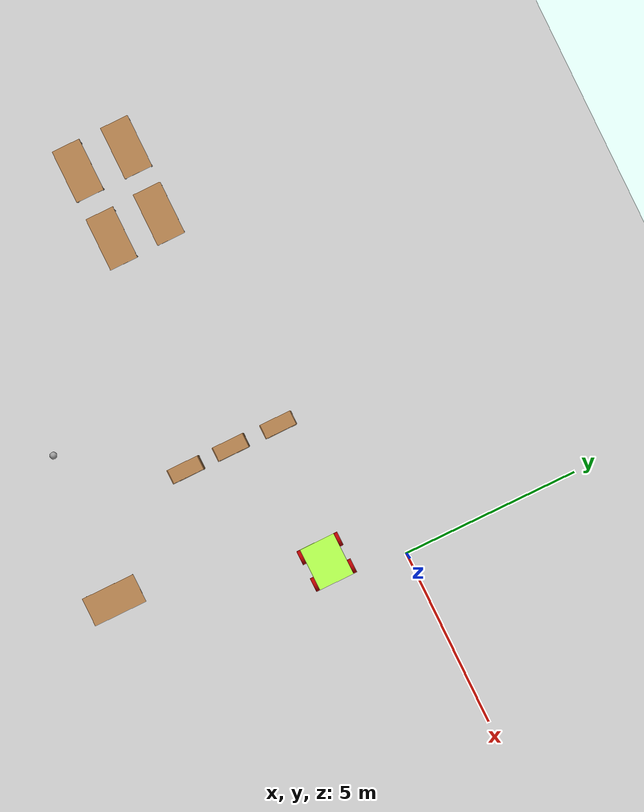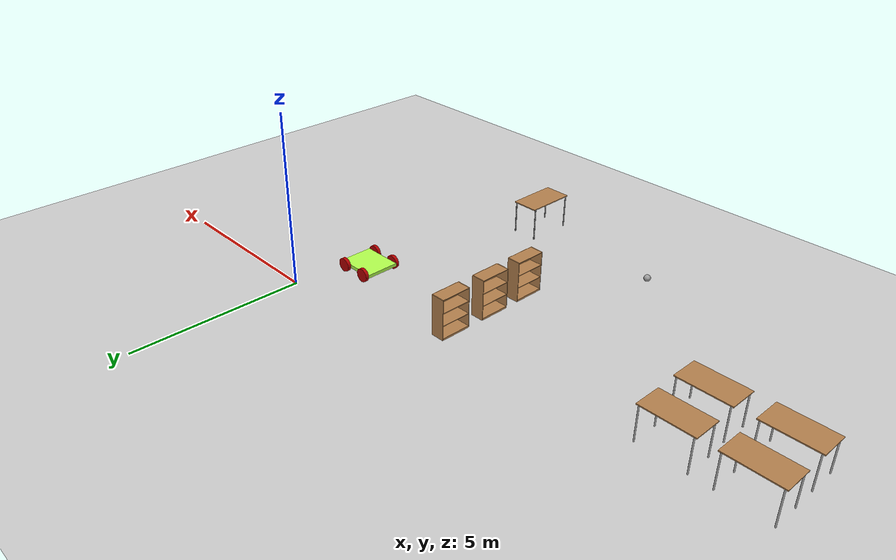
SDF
<sdf version="1.6">
 <world name="default">
  <model name="ground_plane">
   <static>1</static>
   <link name="link">
    <collision name="collision">
     <geometry><plane><normal>0 0 1</normal><size>100 100</size></plane></geometry>
     <surface>
      <contact><collide_bitmask>65535</collide_bitmask></contact>
      <friction><ode><mu>100</mu><mu2>50</mu2></ode></friction>
     </surface>
    </collision>
    <visual name="visual">
     <cast_shadows>0</cast_shadows>
     <geometry><plane><normal>0 0 1</normal><size>100 100</size></plane></geometry>
     <material>
      <script><uri>file://media/materials/scripts/gazebo.material</uri><name>Gazebo/Grey</name></script>
     </material>
    </visual>
   </link>
  </model>
  <model name="bookshelf">
   <static>1</static>
   <link name="link">
    <inertial><mass>1</mass></inertial>
    <collision name="back">
     <pose>0 0.005 0.6 0 -0 0</pose>
     <geometry><box><size>0.9 0.01 1.2</size></box></geometry>
    </collision>
    <visual name="visual1">
     <pose>0 0.005 0.6 0 -0 0</pose>
     <geometry><box><size>0.9 0.01 1.2</size></box></geometry>
     <material>
      <script><uri>file://media/materials/scripts/gazebo.material</uri><name>Gazebo/Wood</name></script>
     </material>
    </visual>
    <collision name="left_side">
     <pose>0.45 -0.195 0.6 0 -0 0</pose>
     <geometry><box><size>0.02 0.4 1.2</size></box></geometry>
    </collision>
    <visual name="visual2">
     <pose>0.45 -0.195 0.6 0 -0 0</pose>
     <geometry><box><size>0.02 0.4 1.2</size></box></geometry>
     <material>
      <script><uri>file://media/materials/scripts/gazebo.material</uri><name>Gazebo/Wood</name></script>
     </material>
    </visual>
    <collision name="right_side">
     <pose>-0.45 -0.195 0.6 0 -0 0</pose>
     <geometry><box><size>0.02 0.4 1.2</size></box></geometry>
    </collision>
    <visual name="visual3">
     <pose>-0.45 -0.195 0.6 0 -0 0</pose>
     <geometry><box><size>0.02 0.4 1.2</size></box></geometry>
     <material>
      <script><uri>file://media/materials/scripts/gazebo.material</uri><name>Gazebo/Wood</name></script>
     </material>
    </visual>
    <collision name="bottom">
     <pose>0 -0.195 0.03 0 -0 0</pose>
     <geometry><box><size>0.88 0.4 0.06</size></box></geometry>
    </collision>
    <visual name="visual4">
     <pose>0 -0.195 0.03 0 -0 0</pose>
     <geometry><box><size>0.88 0.4 0.06</size></box></geometry>
     <material>
      <script><uri>file://media/materials/scripts/gazebo.material</uri><name>Gazebo/Wood</name></script>
     </material>
    </visual>
    <collision name="top">
     <pose>0 -0.195 1.19 0 -0 0</pose>
     <geometry><box><size>0.88 0.4 0.02</size></box></geometry>
    </collision>
    <visual name="visual5">
     <pose>0 -0.195 1.19 0 -0 0</pose>
     <geometry><box><size>0.88 0.4 0.02</size></box></geometry>
     <material>
      <script><uri>file://media/materials/scripts/gazebo.material</uri><name>Gazebo/Wood</name></script>
     </material>
    </visual>
    <collision name="low_shelf">
     <pose>0 -0.195 0.43 0 -0 0</pose>
     <geometry><box><size>0.88 0.4 0.02</size></box></geometry>
    </collision>
    <visual name="visual6">
     <pose>0 -0.195 0.43 0 -0 0</pose>
     <geometry><box><size>0.88 0.4 0.02</size></box></geometry>
     <material>
      <script><uri>file://media/materials/scripts/gazebo.material</uri><name>Gazebo/Wood</name></script>
     </material>
    </visual>
    <collision name="high_shelf">
     <pose>0 -0.195 0.8 0 -0 0</pose>
     <geometry><box><size>0.88 0.4 0.02</size></box></geometry>
    </collision>
    <visual name="visual7">
     <pose>0 -0.195 0.8 0 -0 0</pose>
     <geometry><box><size>0.88 0.4 0.02</size></box></geometry>
     <material>
      <script><uri>file://media/materials/scripts/gazebo.material</uri><name>Gazebo/Wood</name></script>
     </material>
    </visual>
   </link>
   <pose>-4.39932 -4.29752 0 0 0 -1.57079</pose>
  </model>
  <model name="bookshelf_clone">
   <static>1</static>
   <link name="link">
    <inertial><mass>1</mass></inertial>
    <collision name="back">
     <pose>0 0.005 0.6 0 -0 0</pose>
     <geometry><box><size>0.9 0.01 1.2</size></box></geometry>
    </collision>
    <visual name="visual1">
     <pose>0 0.005 0.6 0 -0 0</pose>
     <geometry><box><size>0.9 0.01 1.2</size></box></geometry>
     <material>
      <script><uri>file://media/materials/scripts/gazebo.material</uri><name>Gazebo/Wood</name></script>
     </material>
    </visual>
    <collision name="left_side">
     <pose>0.45 -0.195 0.6 0 -0 0</pose>
     <geometry><box><size>0.02 0.4 1.2</size></box></geometry>
    </collision>
    <visual name="visual2">
     <pose>0.45 -0.195 0.6 0 -0 0</pose>
     <geometry><box><size>0.02 0.4 1.2</size></box></geometry>
     <material>
      <script><uri>file://media/materials/scripts/gazebo.material</uri><name>Gazebo/Wood</name></script>
     </material>
    </visual>
    <collision name="right_side">
     <pose>-0.45 -0.195 0.6 0 -0 0</pose>
     <geometry><box><size>0.02 0.4 1.2</size></box></geometry>
    </collision>
    <visual name="visual3">
     <pose>-0.45 -0.195 0.6 0 -0 0</pose>
     <geometry><box><size>0.02 0.4 1.2</size></box></geometry>
     <material>
      <script><uri>file://media/materials/scripts/gazebo.material</uri><name>Gazebo/Wood</name></script>
     </material>
    </visual>
    <collision name="bottom">
     <pose>0 -0.195 0.03 0 -0 0</pose>
     <geometry><box><size>0.88 0.4 0.06</size></box></geometry>
    </collision>
    <visual name="visual4">
     <pose>0 -0.195 0.03 0 -0 0</pose>
     <geometry><box><size>0.88 0.4 0.06</size></box></geometry>
     <material>
      <script><uri>file://media/materials/scripts/gazebo.material</uri><name>Gazebo/Wood</name></script>
     </material>
    </visual>
    <collision name="top">
     <pose>0 -0.195 1.19 0 -0 0</pose>
     <geometry><box><size>0.88 0.4 0.02</size></box></geometry>
    </collision>
    <visual name="visual5">
     <pose>0 -0.195 1.19 0 -0 0</pose>
     <geometry><box><size>0.88 0.4 0.02</size></box></geometry>
     <material>
      <script><uri>file://media/materials/scripts/gazebo.material</uri><name>Gazebo/Wood</name></script>
     </material>
    </visual>
    <collision name="low_shelf">
     <pose>0 -0.195 0.43 0 -0 0</pose>
     <geometry><box><size>0.88 0.4 0.02</size></box></geometry>
    </collision>
    <visual name="visual6">
     <pose>0 -0.195 0.43 0 -0 0</pose>
     <geometry><box><size>0.88 0.4 0.02</size></box></geometry>
     <material>
      <script><uri>file://media/materials/scripts/gazebo.material</uri><name>Gazebo/Wood</name></script>
     </material>
    </visual>
    <collision name="high_shelf">
     <pose>0 -0.195 0.8 0 -0 0</pose>
     <geometry><box><size>0.88 0.4 0.02</size></box></geometry>
    </collision>
    <visual name="visual7">
     <pose>0 -0.195 0.8 0 -0 0</pose>
     <geometry><box><size>0.88 0.4 0.02</size></box></geometry>
     <material>
      <script><uri>file://media/materials/scripts/gazebo.material</uri><name>Gazebo/Wood</name></script>
     </material>
    </visual>
   </link>
   <pose>-4.40975 -2.96251 0 0 0 -1.57079</pose>
  </model>
  <model name="bookshelf_clone_0">
   <static>1</static>
   <link name="link">
    <inertial><mass>1</mass></inertial>
    <collision name="back">
     <pose>0 0.005 0.6 0 -0 0</pose>
     <geometry><box><size>0.9 0.01 1.2</size></box></geometry>
    </collision>
    <visual name="visual1">
     <pose>0 0.005 0.6 0 -0 0</pose>
     <geometry><box><size>0.9 0.01 1.2</size></box></geometry>
     <material>
      <script><uri>file://media/materials/scripts/gazebo.material</uri><name>Gazebo/Wood</name></script>
     </material>
    </visual>
    <collision name="left_side">
     <pose>0.45 -0.195 0.6 0 -0 0</pose>
     <geometry><box><size>0.02 0.4 1.2</size></box></geometry>
    </collision>
    <visual name="visual2">
     <pose>0.45 -0.195 0.6 0 -0 0</pose>
     <geometry><box><size>0.02 0.4 1.2</size></box></geometry>
     <material>
      <script><uri>file://media/materials/scripts/gazebo.material</uri><name>Gazebo/Wood</name></script>
     </material>
    </visual>
    <collision name="right_side">
     <pose>-0.45 -0.195 0.6 0 -0 0</pose>
     <geometry><box><size>0.02 0.4 1.2</size></box></geometry>
    </collision>
    <visual name="visual3">
     <pose>-0.45 -0.195 0.6 0 -0 0</pose>
     <geometry><box><size>0.02 0.4 1.2</size></box></geometry>
     <material>
      <script><uri>file://media/materials/scripts/gazebo.material</uri><name>Gazebo/Wood</name></script>
     </material>
    </visual>
    <collision name="bottom">
     <pose>0 -0.195 0.03 0 -0 0</pose>
     <geometry><box><size>0.88 0.4 0.06</size></box></geometry>
    </collision>
    <visual name="visual4">
     <pose>0 -0.195 0.03 0 -0 0</pose>
     <geometry><box><size>0.88 0.4 0.06</size></box></geometry>
     <material>
      <script><uri>file://media/materials/scripts/gazebo.material</uri><name>Gazebo/Wood</name></script>
     </material>
    </visual>
    <collision name="top">
     <pose>0 -0.195 1.19 0 -0 0</pose>
     <geometry><box><size>0.88 0.4 0.02</size></box></geometry>
    </collision>
    <visual name="visual5">
     <pose>0 -0.195 1.19 0 -0 0</pose>
     <geometry><box><size>0.88 0.4 0.02</size></box></geometry>
     <material>
      <script><uri>file://media/materials/scripts/gazebo.material</uri><name>Gazebo/Wood</name></script>
     </material>
    </visual>
    <collision name="low_shelf">
     <pose>0 -0.195 0.43 0 -0 0</pose>
     <geometry><box><size>0.88 0.4 0.02</size></box></geometry>
    </collision>
    <visual name="visual6">
     <pose>0 -0.195 0.43 0 -0 0</pose>
     <geometry><box><size>0.88 0.4 0.02</size></box></geometry>
     <material>
      <script><uri>file://media/materials/scripts/gazebo.material</uri><name>Gazebo/Wood</name></script>
     </material>
    </visual>
    <collision name="high_shelf">
     <pose>0 -0.195 0.8 0 -0 0</pose>
     <geometry><box><size>0.88 0.4 0.02</size></box></geometry>
    </collision>
    <visual name="visual7">
     <pose>0 -0.195 0.8 0 -0 0</pose>
     <geometry><box><size>0.88 0.4 0.02</size></box></geometry>
     <material>
      <script><uri>file://media/materials/scripts/gazebo.material</uri><name>Gazebo/Wood</name></script>
     </material>
    </visual>
   </link>
   <pose>-4.39783 -1.57004 0 0 0 -1.57079</pose>
  </model>
  <model name="table">
   <static>1</static>
   <link name="link">
    <collision name="surface">
     <pose>0 0 1 0 -0 0</pose>
     <geometry><box><size>1.5 0.8 0.03</size></box></geometry>
     <surface><friction><ode><mu>0.6</mu><mu2>0.6</mu2></ode></friction></surface>
    </collision>
    <visual name="visual1">
     <pose>0 0 1 0 -0 0</pose>
     <geometry><box><size>1.5 0.8 0.03</size></box></geometry>
     <material>
      <script><uri>file://media/materials/scripts/gazebo.material</uri><name>Gazebo/Wood</name></script>
     </material>
    </visual>
    <collision name="front_left_leg">
     <pose>0.68 0.38 0.5 0 -0 0</pose>
     <geometry><cylinder><radius>0.02</radius><length>1</length></cylinder></geometry>
    </collision>
    <visual name="front_left_leg">
     <pose>0.68 0.38 0.5 0 -0 0</pose>
     <geometry><cylinder><radius>0.02</radius><length>1</length></cylinder></geometry>
     <material>
      <script><uri>file://media/materials/scripts/gazebo.material</uri><name>Gazebo/Grey</name></script>
     </material>
    </visual>
    <collision name="front_right_leg">
     <pose>0.68 -0.38 0.5 0 -0 0</pose>
     <geometry><cylinder><radius>0.02</radius><length>1</length></cylinder></geometry>
    </collision>
    <visual name="front_right_leg">
     <pose>0.68 -0.38 0.5 0 -0 0</pose>
     <geometry><cylinder><radius>0.02</radius><length>1</length></cylinder></geometry>
     <material>
      <script><uri>file://media/materials/scripts/gazebo.material</uri><name>Gazebo/Grey</name></script>
     </material>
    </visual>
    <collision name="back_right_leg">
     <pose>-0.68 -0.38 0.5 0 -0 0</pose>
     <geometry><cylinder><radius>0.02</radius><length>1</length></cylinder></geometry>
    </collision>
    <visual name="back_right_leg">
     <pose>-0.68 -0.38 0.5 0 -0 0</pose>
     <geometry><cylinder><radius>0.02</radius><length>1</length></cylinder></geometry>
     <material>
      <script><uri>file://media/materials/scripts/gazebo.material</uri><name>Gazebo/Grey</name></script>
     </material>
    </visual>
    <collision name="back_left_leg">
     <pose>-0.68 0.38 0.5 0 -0 0</pose>
     <geometry><cylinder><radius>0.02</radius><length>1</length></cylinder></geometry>
    </collision>
    <visual name="back_left_leg">
     <pose>-0.68 0.38 0.5 0 -0 0</pose>
     <geometry><cylinder><radius>0.02</radius><length>1</length></cylinder></geometry>
     <material>
      <script><uri>file://media/materials/scripts/gazebo.material</uri><name>Gazebo/Grey</name></script>
     </material>
    </visual>
   </link>
   <pose>-2.30991 -7.51771 0 0 -0 1.5707</pose>
  </model>
  <model name="table_0_clone_1">
   <static>1</static>
   <link name="link">
    <collision name="surface">
     <pose>0 0 1 0 -0 0</pose>
     <geometry><box><size>1.5 0.8 0.03</size></box></geometry>
     <surface><friction><ode><mu>0.6</mu><mu2>0.6</mu2></ode></friction></surface>
    </collision>
    <visual name="visual1">
     <pose>0 0 1 0 -0 0</pose>
     <geometry><box><size>1.5 0.8 0.03</size></box></geometry>
     <material>
      <script><uri>file://media/materials/scripts/gazebo.material</uri><name>Gazebo/Wood</name></script>
     </material>
    </visual>
    <collision name="front_left_leg">
     <pose>0.68 0.38 0.5 0 -0 0</pose>
     <geometry><cylinder><radius>0.02</radius><length>1</length></cylinder></geometry>
    </collision>
    <visual name="front_left_leg">
     <pose>0.68 0.38 0.5 0 -0 0</pose>
     <geometry><cylinder><radius>0.02</radius><length>1</length></cylinder></geometry>
     <material>
      <script><uri>file://media/materials/scripts/gazebo.material</uri><name>Gazebo/Grey</name></script>
     </material>
    </visual>
    <collision name="front_right_leg">
     <pose>0.68 -0.38 0.5 0 -0 0</pose>
     <geometry><cylinder><radius>0.02</radius><length>1</length></cylinder></geometry>
    </collision>
    <visual name="front_right_leg">
     <pose>0.68 -0.38 0.5 0 -0 0</pose>
     <geometry><cylinder><radius>0.02</radius><length>1</length></cylinder></geometry>
     <material>
      <script><uri>file://media/materials/scripts/gazebo.material</uri><name>Gazebo/Grey</name></script>
     </material>
    </visual>
    <collision name="back_right_leg">
     <pose>-0.68 -0.38 0.5 0 -0 0</pose>
     <geometry><cylinder><radius>0.02</radius><length>1</length></cylinder></geometry>
    </collision>
    <visual name="back_right_leg">
     <pose>-0.68 -0.38 0.5 0 -0 0</pose>
     <geometry><cylinder><radius>0.02</radius><length>1</length></cylinder></geometry>
     <material>
      <script><uri>file://media/materials/scripts/gazebo.material</uri><name>Gazebo/Grey</name></script>
     </material>
    </visual>
    <collision name="back_left_leg">
     <pose>-0.68 0.38 0.5 0 -0 0</pose>
     <geometry><cylinder><radius>0.02</radius><length>1</length></cylinder></geometry>
    </collision>
    <visual name="back_left_leg">
     <pose>-0.68 0.38 0.5 0 -0 0</pose>
     <geometry><cylinder><radius>0.02</radius><length>1</length></cylinder></geometry>
     <material>
      <script><uri>file://media/materials/scripts/gazebo.material</uri><name>Gazebo/Grey</name></script>
     </material>
    </visual>
   </link>
   <pose>-12.9803 -1.96561 0 0 -0 0</pose>
  </model>
  <model name="table_0_clone_2">
   <static>1</static>
   <link name="link">
    <collision name="surface">
     <pose>0 0 1 0 -0 0</pose>
     <geometry><box><size>1.5 0.8 0.03</size></box></geometry>
     <surface><friction><ode><mu>0.6</mu><mu2>0.6</mu2></ode></friction></surface>
    </collision>
    <visual name="visual1">
     <pose>0 0 1 0 -0 0</pose>
     <geometry><box><size>1.5 0.8 0.03</size></box></geometry>
     <material>
      <script><uri>file://media/materials/scripts/gazebo.material</uri><name>Gazebo/Wood</name></script>
     </material>
    </visual>
    <collision name="front_left_leg">
     <pose>0.68 0.38 0.5 0 -0 0</pose>
     <geometry><cylinder><radius>0.02</radius><length>1</length></cylinder></geometry>
    </collision>
    <visual name="front_left_leg">
     <pose>0.68 0.38 0.5 0 -0 0</pose>
     <geometry><cylinder><radius>0.02</radius><length>1</length></cylinder></geometry>
     <material>
      <script><uri>file://media/materials/scripts/gazebo.material</uri><name>Gazebo/Grey</name></script>
     </material>
    </visual>
    <collision name="front_right_leg">
     <pose>0.68 -0.38 0.5 0 -0 0</pose>
     <geometry><cylinder><radius>0.02</radius><length>1</length></cylinder></geometry>
    </collision>
    <visual name="front_right_leg">
     <pose>0.68 -0.38 0.5 0 -0 0</pose>
     <geometry><cylinder><radius>0.02</radius><length>1</length></cylinder></geometry>
     <material>
      <script><uri>file://media/materials/scripts/gazebo.material</uri><name>Gazebo/Grey</name></script>
     </material>
    </visual>
    <collision name="back_right_leg">
     <pose>-0.68 -0.38 0.5 0 -0 0</pose>
     <geometry><cylinder><radius>0.02</radius><length>1</length></cylinder></geometry>
    </collision>
    <visual name="back_right_leg">
     <pose>-0.68 -0.38 0.5 0 -0 0</pose>
     <geometry><cylinder><radius>0.02</radius><length>1</length></cylinder></geometry>
     <material>
      <script><uri>file://media/materials/scripts/gazebo.material</uri><name>Gazebo/Grey</name></script>
     </material>
    </visual>
    <collision name="back_left_leg">
     <pose>-0.68 0.38 0.5 0 -0 0</pose>
     <geometry><cylinder><radius>0.02</radius><length>1</length></cylinder></geometry>
    </collision>
    <visual name="back_left_leg">
     <pose>-0.68 0.38 0.5 0 -0 0</pose>
     <geometry><cylinder><radius>0.02</radius><length>1</length></cylinder></geometry>
     <material>
      <script><uri>file://media/materials/scripts/gazebo.material</uri><name>Gazebo/Grey</name></script>
     </material>
    </visual>
   </link>
   <pose>-12.9768 -3.39456 0 0 -0 0</pose>
  </model>
  <model name="table_0_clone_4">
   <static>1</static>
   <link name="link">
    <collision name="surface">
     <pose>0 0 1 0 -0 0</pose>
     <geometry><box><size>1.5 0.8 0.03</size></box></geometry>
     <surface><friction><ode><mu>0.6</mu><mu2>0.6</mu2></ode></friction></surface>
    </collision>
    <visual name="visual1">
     <pose>0 0 1 0 -0 0</pose>
     <geometry><box><size>1.5 0.8 0.03</size></box></geometry>
     <material>
      <script><uri>file://media/materials/scripts/gazebo.material</uri><name>Gazebo/Wood</name></script>
     </material>
    </visual>
    <collision name="front_left_leg">
     <pose>0.68 0.38 0.5 0 -0 0</pose>
     <geometry><cylinder><radius>0.02</radius><length>1</length></cylinder></geometry>
    </collision>
    <visual name="front_left_leg">
     <pose>0.68 0.38 0.5 0 -0 0</pose>
     <geometry><cylinder><radius>0.02</radius><length>1</length></cylinder></geometry>
     <material>
      <script><uri>file://media/materials/scripts/gazebo.material</uri><name>Gazebo/Grey</name></script>
     </material>
    </visual>
    <collision name="front_right_leg">
     <pose>0.68 -0.38 0.5 0 -0 0</pose>
     <geometry><cylinder><radius>0.02</radius><length>1</length></cylinder></geometry>
    </collision>
    <visual name="front_right_leg">
     <pose>0.68 -0.38 0.5 0 -0 0</pose>
     <geometry><cylinder><radius>0.02</radius><length>1</length></cylinder></geometry>
     <material>
      <script><uri>file://media/materials/scripts/gazebo.material</uri><name>Gazebo/Grey</name></script>
     </material>
    </visual>
    <collision name="back_right_leg">
     <pose>-0.68 -0.38 0.5 0 -0 0</pose>
     <geometry><cylinder><radius>0.02</radius><length>1</length></cylinder></geometry>
    </collision>
    <visual name="back_right_leg">
     <pose>-0.68 -0.38 0.5 0 -0 0</pose>
     <geometry><cylinder><radius>0.02</radius><length>1</length></cylinder></geometry>
     <material>
      <script><uri>file://media/materials/scripts/gazebo.material</uri><name>Gazebo/Grey</name></script>
     </material>
    </visual>
    <collision name="back_left_leg">
     <pose>-0.68 0.38 0.5 0 -0 0</pose>
     <geometry><cylinder><radius>0.02</radius><length>1</length></cylinder></geometry>
    </collision>
    <visual name="back_left_leg">
     <pose>-0.68 0.38 0.5 0 -0 0</pose>
     <geometry><cylinder><radius>0.02</radius><length>1</length></cylinder></geometry>
     <material>
      <script><uri>file://media/materials/scripts/gazebo.material</uri><name>Gazebo/Grey</name></script>
     </material>
    </visual>
   </link>
   <pose>-11.0118 -1.96096 0 0 -0 0</pose>
  </model>
  <model name="table_0_clone_5">
   <static>1</static>
   <link name="link">
    <collision name="surface">
     <pose>0 0 1 0 -0 0</pose>
     <geometry><box><size>1.5 0.8 0.03</size></box></geometry>
     <surface><friction><ode><mu>0.6</mu><mu2>0.6</mu2></ode></friction></surface>
    </collision>
    <visual name="visual1">
     <pose>0 0 1 0 -0 0</pose>
     <geometry><box><size>1.5 0.8 0.03</size></box></geometry>
     <material>
      <script><uri>file://media/materials/scripts/gazebo.material</uri><name>Gazebo/Wood</name></script>
     </material>
    </visual>
    <collision name="front_left_leg">
     <pose>0.68 0.38 0.5 0 -0 0</pose>
     <geometry><cylinder><radius>0.02</radius><length>1</length></cylinder></geometry>
    </collision>
    <visual name="front_left_leg">
     <pose>0.68 0.38 0.5 0 -0 0</pose>
     <geometry><cylinder><radius>0.02</radius><length>1</length></cylinder></geometry>
     <material>
      <script><uri>file://media/materials/scripts/gazebo.material</uri><name>Gazebo/Grey</name></script>
     </material>
    </visual>
    <collision name="front_right_leg">
     <pose>0.68 -0.38 0.5 0 -0 0</pose>
     <geometry><cylinder><radius>0.02</radius><length>1</length></cylinder></geometry>
    </collision>
    <visual name="front_right_leg">
     <pose>0.68 -0.38 0.5 0 -0 0</pose>
     <geometry><cylinder><radius>0.02</radius><length>1</length></cylinder></geometry>
     <material>
      <script><uri>file://media/materials/scripts/gazebo.material</uri><name>Gazebo/Grey</name></script>
     </material>
    </visual>
    <collision name="back_right_leg">
     <pose>-0.68 -0.38 0.5 0 -0 0</pose>
     <geometry><cylinder><radius>0.02</radius><length>1</length></cylinder></geometry>
    </collision>
    <visual name="back_right_leg">
     <pose>-0.68 -0.38 0.5 0 -0 0</pose>
     <geometry><cylinder><radius>0.02</radius><length>1</length></cylinder></geometry>
     <material>
      <script><uri>file://media/materials/scripts/gazebo.material</uri><name>Gazebo/Grey</name></script>
     </material>
    </visual>
    <collision name="back_left_leg">
     <pose>-0.68 0.38 0.5 0 -0 0</pose>
     <geometry><cylinder><radius>0.02</radius><length>1</length></cylinder></geometry>
    </collision>
    <visual name="back_left_leg">
     <pose>-0.68 0.38 0.5 0 -0 0</pose>
     <geometry><cylinder><radius>0.02</radius><length>1</length></cylinder></geometry>
     <material>
      <script><uri>file://media/materials/scripts/gazebo.material</uri><name>Gazebo/Grey</name></script>
     </material>
    </visual>
   </link>
   <pose>-10.971 -3.37433 0 0 -0 0</pose>
  </model>
  <model name="SimpleCar_0">
   <link name="link_0">
    <inertial>
     <mass>1</mass>
     <inertia>
      <ixx>0.166667</ixx>
      <ixy>0</ixy>
      <ixz>0</ixz>
      <iyy>0.166667</iyy>
      <iyz>0</iyz>
      <izz>0.166667</izz>
     </inertia>
    </inertial>
    <visual name="visual">
     <geometry><box><size>1.2 1 0.1</size></box></geometry>
     <material>
      <lighting>1</lighting>
      <script><uri>file://media/materials/scripts/gazebo.material</uri><name>Gazebo/Grey</name></script>
      <shader type="pixel"><normal_map>__default__</normal_map></shader>
      <ambient>0.7 1 0.3 1</ambient>
      <diffuse>0.7 1 0.3 1</diffuse>
      <specular>0 0 0 1</specular>
      <emissive>0 0 0 1</emissive>
     </material>
    </visual>
    <collision name="collision">
     <geometry><box><size>1.2 1 0.1</size></box></geometry>
     <surface>
      <friction>
       <ode><mu>1</mu><mu2>1</mu2><fdir1>0 0 0</fdir1><slip1>0</slip1><slip2>0</slip2></ode>
       <torsional>
        <coefficient>1</coefficient>
        <patch_radius>0</patch_radius>
        <surface_radius>0</surface_radius>
        <use_patch_radius>1</use_patch_radius>
        <ode><slip>0</slip></ode>
       </torsional>
      </friction>
      <bounce><restitution_coefficient>0</restitution_coefficient><threshold>1e+06</threshold></bounce>
      <contact>
       <collide_without_contact>0</collide_without_contact>
       <collide_without_contact_bitmask>1</collide_without_contact_bitmask>
       <collide_bitmask>1</collide_bitmask>
       <ode>
        <soft_cfm>0</soft_cfm>
        <soft_erp>0.2</soft_erp>
        <kp>1e+13</kp>
        <kd>1</kd>
        <max_vel>0.01</max_vel>
        <min_depth>0</min_depth>
       </ode>
       <bullet>
        <split_impulse>1</split_impulse>
        <split_impulse_penetration_threshold>-0.01</split_impulse_penetration_threshold>
        <soft_cfm>0</soft_cfm>
        <soft_erp>0.2</soft_erp>
        <kp>1e+13</kp>
        <kd>1</kd>
       </bullet>
      </contact>
     </surface>
    </collision>
   </link>
   <link name="link_1">
    <pose>0.4 -0.550019 0 1.5707 -0 0</pose>
    <inertial>
     <mass>1</mass>
     <inertia><ixx>0.145833</ixx><ixy>0</ixy><ixz>0</ixz><iyy>0.145833</iyy><iyz>0</iyz><izz>0.125</izz></inertia>
    </inertial>
    <visual name="visual">
     <geometry><cylinder><radius>0.2</radius><length>0.1</length></cylinder></geometry>
     <material>
      <lighting>1</lighting>
      <script><uri>file://media/materials/scripts/gazebo.material</uri><name>Gazebo/Grey</name></script>
      <shader type="pixel"><normal_map>__default__</normal_map></shader>
      <ambient>1 0 0 1</ambient>
      <diffuse>0.7 0 0 1</diffuse>
      <specular>0.01 0.01 0.01 1</specular>
      <emissive>0 0 0 1</emissive>
     </material>
    </visual>
    <collision name="collision">
     <geometry><cylinder><radius>0.2</radius><length>0.1</length></cylinder></geometry>
     <surface>
      <friction>
       <ode><mu>1</mu><mu2>1</mu2><fdir1>0 0 0</fdir1><slip1>0</slip1><slip2>0</slip2></ode>
       <torsional>
        <coefficient>1</coefficient>
        <patch_radius>0</patch_radius>
        <surface_radius>0</surface_radius>
        <use_patch_radius>1</use_patch_radius>
        <ode><slip>0</slip></ode>
       </torsional>
      </friction>
      <bounce><restitution_coefficient>0</restitution_coefficient><threshold>1e+06</threshold></bounce>
      <contact>
       <collide_without_contact>0</collide_without_contact>
       <collide_without_contact_bitmask>1</collide_without_contact_bitmask>
       <collide_bitmask>1</collide_bitmask>
       <ode>
        <soft_cfm>0</soft_cfm>
        <soft_erp>0.2</soft_erp>
        <kp>1e+13</kp>
        <kd>1</kd>
        <max_vel>0.01</max_vel>
        <min_depth>0</min_depth>
       </ode>
       <bullet>
        <split_impulse>1</split_impulse>
        <split_impulse_penetration_threshold>-0.01</split_impulse_penetration_threshold>
        <soft_cfm>0</soft_cfm>
        <soft_erp>0.2</soft_erp>
        <kp>1e+13</kp>
        <kd>1</kd>
       </bullet>
      </contact>
     </surface>
    </collision>
   </link>
   <link name="link_1_clone">
    <pose>-0.4 0.550019 0 1.5707 -0 0</pose>
    <inertial>
     <mass>1</mass>
     <inertia><ixx>0.145833</ixx><ixy>0</ixy><ixz>0</ixz><iyy>0.145833</iyy><iyz>0</iyz><izz>0.125</izz></inertia>
    </inertial>
    <visual name="visual">
     <geometry><cylinder><radius>0.2</radius><length>0.1</length></cylinder></geometry>
     <material>
      <lighting>1</lighting>
      <script><uri>file://media/materials/scripts/gazebo.material</uri><name>Gazebo/Grey</name></script>
      <shader type="pixel"><normal_map>__default__</normal_map></shader>
      <ambient>1 0 0 1</ambient>
      <diffuse>0.7 0 0 1</diffuse>
      <specular>0.01 0.01 0.01 1</specular>
      <emissive>0 0 0 1</emissive>
     </material>
    </visual>
    <collision name="collision">
     <geometry><cylinder><radius>0.2</radius><length>0.1</length></cylinder></geometry>
     <surface>
      <friction>
       <ode><mu>1</mu><mu2>1</mu2><fdir1>0 0 0</fdir1><slip1>0</slip1><slip2>0</slip2></ode>
       <torsional>
        <coefficient>1</coefficient>
        <patch_radius>0</patch_radius>
        <surface_radius>0</surface_radius>
        <use_patch_radius>1</use_patch_radius>
        <ode><slip>0</slip></ode>
       </torsional>
      </friction>
      <bounce><restitution_coefficient>0</restitution_coefficient><threshold>1e+06</threshold></bounce>
      <contact>
       <collide_without_contact>0</collide_without_contact>
       <collide_without_contact_bitmask>1</collide_without_contact_bitmask>
       <collide_bitmask>1</collide_bitmask>
       <ode>
        <soft_cfm>0</soft_cfm>
        <soft_erp>0.2</soft_erp>
        <kp>1e+13</kp>
        <kd>1</kd>
        <max_vel>0.01</max_vel>
        <min_depth>0</min_depth>
       </ode>
       <bullet>
        <split_impulse>1</split_impulse>
        <split_impulse_penetration_threshold>-0.01</split_impulse_penetration_threshold>
        <soft_cfm>0</soft_cfm>
        <soft_erp>0.2</soft_erp>
        <kp>1e+13</kp>
        <kd>1</kd>
       </bullet>
      </contact>
     </surface>
    </collision>
   </link>
   <link name="link_1_clone_0">
    <pose>0.4 0.550019 0 1.5707 -0 0</pose>
    <inertial>
     <mass>1</mass>
     <inertia><ixx>0.145833</ixx><ixy>0</ixy><ixz>0</ixz><iyy>0.145833</iyy><iyz>0</iyz><izz>0.125</izz></inertia>
    </inertial>
    <visual name="visual">
     <geometry><cylinder><radius>0.2</radius><length>0.1</length></cylinder></geometry>
     <material>
      <lighting>1</lighting>
      <script><uri>file://media/materials/scripts/gazebo.material</uri><name>Gazebo/Grey</name></script>
      <shader type="pixel"><normal_map>__default__</normal_map></shader>
      <ambient>1 0 0 1</ambient>
      <diffuse>0.7 0 0 1</diffuse>
      <specular>0.01 0.01 0.01 1</specular>
      <emissive>0 0 0 1</emissive>
     </material>
    </visual>
    <collision name="collision">
     <geometry><cylinder><radius>0.2</radius><length>0.1</length></cylinder></geometry>
     <surface>
      <friction>
       <ode><mu>1</mu><mu2>1</mu2><fdir1>0 0 0</fdir1><slip1>0</slip1><slip2>0</slip2></ode>
       <torsional>
        <coefficient>1</coefficient>
        <patch_radius>0</patch_radius>
        <surface_radius>0</surface_radius>
        <use_patch_radius>1</use_patch_radius>
        <ode><slip>0</slip></ode>
       </torsional>
      </friction>
      <bounce><restitution_coefficient>0</restitution_coefficient><threshold>1e+06</threshold></bounce>
      <contact>
       <collide_without_contact>0</collide_without_contact>
       <collide_without_contact_bitmask>1</collide_without_contact_bitmask>
       <collide_bitmask>1</collide_bitmask>
       <ode>
        <soft_cfm>0</soft_cfm>
        <soft_erp>0.2</soft_erp>
        <kp>1e+13</kp>
        <kd>1</kd>
        <max_vel>0.01</max_vel>
        <min_depth>0</min_depth>
       </ode>
       <bullet>
        <split_impulse>1</split_impulse>
        <split_impulse_penetration_threshold>-0.01</split_impulse_penetration_threshold>
        <soft_cfm>0</soft_cfm>
        <soft_erp>0.2</soft_erp>
        <kp>1e+13</kp>
        <kd>1</kd>
       </bullet>
      </contact>
     </surface>
    </collision>
   </link>
   <link name="link_1_clone_1">
    <pose>-0.4 -0.550019 0 1.5707 -0 0</pose>
    <inertial>
     <mass>1</mass>
     <inertia><ixx>0.145833</ixx><ixy>0</ixy><ixz>0</ixz><iyy>0.145833</iyy><iyz>0</iyz><izz>0.125</izz></inertia>
    </inertial>
    <visual name="visual">
     <geometry><cylinder><radius>0.2</radius><length>0.1</length></cylinder></geometry>
     <material>
      <lighting>1</lighting>
      <script><uri>file://media/materials/scripts/gazebo.material</uri><name>Gazebo/Grey</name></script>
      <shader type="pixel"><normal_map>__default__</normal_map></shader>
      <ambient>1 0 0 1</ambient>
      <diffuse>0.7 0 0 1</diffuse>
      <specular>0.01 0.01 0.01 1</specular>
      <emissive>0 0 0 1</emissive>
     </material>
    </visual>
    <collision name="collision">
     <geometry><cylinder><radius>0.2</radius><length>0.1</length></cylinder></geometry>
     <surface>
      <friction>
       <ode><mu>1</mu><mu2>1</mu2><fdir1>0 0 0</fdir1><slip1>0</slip1><slip2>0</slip2></ode>
       <torsional>
        <coefficient>1</coefficient>
        <patch_radius>0</patch_radius>
        <surface_radius>0</surface_radius>
        <use_patch_radius>1</use_patch_radius>
        <ode><slip>0</slip></ode>
       </torsional>
      </friction>
      <bounce><restitution_coefficient>0</restitution_coefficient><threshold>1e+06</threshold></bounce>
      <contact>
       <collide_without_contact>0</collide_without_contact>
       <collide_without_contact_bitmask>1</collide_without_contact_bitmask>
       <collide_bitmask>1</collide_bitmask>
       <ode>
        <soft_cfm>0</soft_cfm>
        <soft_erp>0.2</soft_erp>
        <kp>1e+13</kp>
        <kd>1</kd>
        <max_vel>0.01</max_vel>
        <min_depth>0</min_depth>
       </ode>
       <bullet>
        <split_impulse>1</split_impulse>
        <split_impulse_penetration_threshold>-0.01</split_impulse_penetration_threshold>
        <soft_cfm>0</soft_cfm>
        <soft_erp>0.2</soft_erp>
        <kp>1e+13</kp>
        <kd>1</kd>
       </bullet>
      </contact>
     </surface>
    </collision>
   </link>
   <joint name="link_0_JOINT_1" type="revolute">
    <parent>link_0</parent>
    <child>link_1_clone</child>
    <axis>
     <xyz>0 0 1</xyz>
     <use_parent_model_frame>0</use_parent_model_frame>
     <limit>
      <lower>-1.79769e+308</lower>
      <upper>1.79769e+308</upper>
      <effort>-1</effort>
      <velocity>-1</velocity>
     </limit>
     <dynamics>
      <spring_reference>0</spring_reference>
      <spring_stiffness>0</spring_stiffness>
      <damping>0</damping>
      <friction>0</friction>
     </dynamics>
    </axis>
    <physics>
     <ode><limit><cfm>0</cfm><erp>0.2</erp></limit><suspension><cfm>0</cfm><erp>0.2</erp></suspension></ode>
    </physics>
   </joint>
   <joint name="link_0_JOINT_3" type="revolute">
    <parent>link_0</parent>
    <child>link_1_clone_0</child>
    <axis>
     <xyz>0 0 1</xyz>
     <use_parent_model_frame>0</use_parent_model_frame>
     <limit>
      <lower>-1.79769e+308</lower>
      <upper>1.79769e+308</upper>
      <effort>-1</effort>
      <velocity>-1</velocity>
     </limit>
     <dynamics>
      <spring_reference>0</spring_reference>
      <spring_stiffness>0</spring_stiffness>
      <damping>0</damping>
      <friction>0</friction>
     </dynamics>
    </axis>
    <physics>
     <ode><limit><cfm>0</cfm><erp>0.2</erp></limit><suspension><cfm>0</cfm><erp>0.2</erp></suspension></ode>
    </physics>
   </joint>
   <joint name="link_0_JOINT_4" type="revolute">
    <parent>link_0</parent>
    <child>link_1_clone_1</child>
    <axis>
     <xyz>0 0 1</xyz>
     <use_parent_model_frame>0</use_parent_model_frame>
     <limit>
      <lower>-1.79769e+308</lower>
      <upper>1.79769e+308</upper>
      <effort>-1</effort>
      <velocity>-1</velocity>
     </limit>
     <dynamics>
      <spring_reference>0</spring_reference>
      <spring_stiffness>0</spring_stiffness>
      <damping>0</damping>
      <friction>0</friction>
     </dynamics>
    </axis>
    <physics>
     <ode><limit><cfm>0</cfm><erp>0.2</erp></limit><suspension><cfm>0</cfm><erp>0.2</erp></suspension></ode>
    </physics>
   </joint>
   <joint name="link_0_JOINT_6" type="revolute">
    <parent>link_0</parent>
    <child>link_1</child>
    <axis>
     <xyz>0 0 1</xyz>
     <use_parent_model_frame>0</use_parent_model_frame>
     <limit>
      <lower>-1.79769e+308</lower>
      <upper>1.79769e+308</upper>
      <effort>-1</effort>
      <velocity>-1</velocity>
     </limit>
     <dynamics>
      <spring_reference>0</spring_reference>
      <spring_stiffness>0</spring_stiffness>
      <damping>0</damping>
      <friction>0</friction>
     </dynamics>
    </axis>
    <physics>
     <ode><limit><cfm>0</cfm><erp>0.2</erp></limit><suspension><cfm>0</cfm><erp>0.2</erp></suspension></ode>
    </physics>
   </joint>
   <static>0</static>
   <pose>-0.73874 -2.00983 0.200005 0 -0 0.007281</pose>
  </model>
  <model name="white_ball">
   <link name="link_0">
    <pose>0.274968 -0.278658 0.5 0 -0 0</pose>
    <inertial>
     <mass>1</mass>
     <inertia><ixx>0.1</ixx><ixy>0</ixy><ixz>0</ixz><iyy>0.1</iyy><iyz>0</iyz><izz>0.1</izz></inertia>
    </inertial>
    <visual name="visual">
     <geometry><sphere><radius>0.1</radius></sphere></geometry>
     <material>
      <lighting>1</lighting>
      <script><uri>file://media/materials/scripts/gazebo.material</uri><name>Gazebo/Grey</name></script>
      <shader type="pixel"><normal_map>__default__</normal_map></shader>
      <ambient>1 1 1 1</ambient>
      <diffuse>1 1 1 1</diffuse>
      <specular>1 1 1 1</specular>
      <emissive>1 1 1 1</emissive>
     </material>
    </visual>
    <collision name="collision">
     <geometry><sphere><radius>0.1</radius></sphere></geometry>
     <surface>
      <friction>
       <ode><mu>1</mu><mu2>1</mu2><fdir1>0 0 0</fdir1><slip1>0</slip1><slip2>0</slip2></ode>
       <torsional>
        <coefficient>1</coefficient>
        <patch_radius>0</patch_radius>
        <surface_radius>0</surface_radius>
        <use_patch_radius>1</use_patch_radius>
        <ode><slip>0</slip></ode>
       </torsional>
      </friction>
      <bounce><restitution_coefficient>0</restitution_coefficient><threshold>1e+06</threshold></bounce>
      <contact>
       <collide_without_contact>0</collide_without_contact>
       <collide_without_contact_bitmask>1</collide_without_contact_bitmask>
       <collide_bitmask>1</collide_bitmask>
       <ode>
        <soft_cfm>0</soft_cfm>
        <soft_erp>0.2</soft_erp>
        <kp>1e+13</kp>
        <kd>1</kd>
        <max_vel>0.01</max_vel>
        <min_depth>0</min_depth>
       </ode>
       <bullet>
        <split_impulse>1</split_impulse>
        <split_impulse_penetration_threshold>-0.01</split_impulse_penetration_threshold>
        <soft_cfm>0</soft_cfm>
        <soft_erp>0.2</soft_erp>
        <kp>1e+13</kp>
        <kd>1</kd>
       </bullet>
      </contact>
     </surface>
    </collision>
   </link>
   <static>0</static>
   <pose>-6.76394 -7.0599 -0.4 0 -0 0</pose>
  </model>
 </world>
</sdf>
